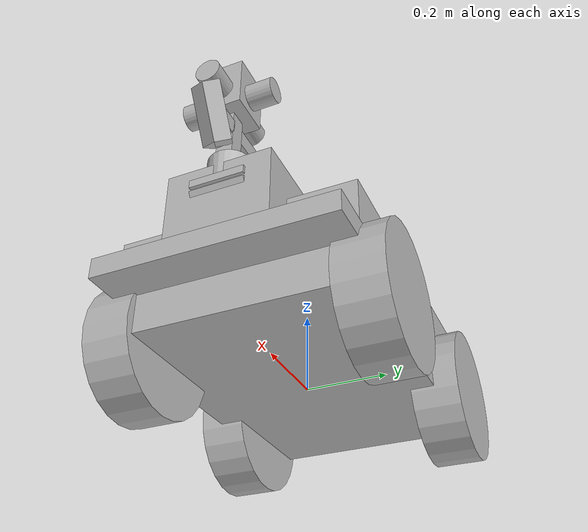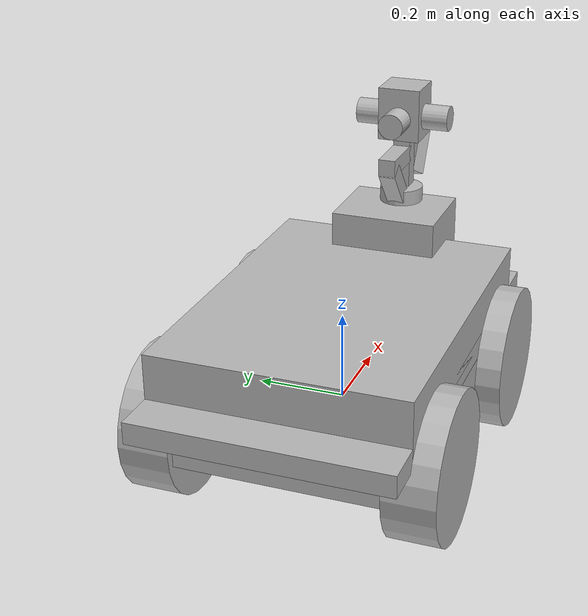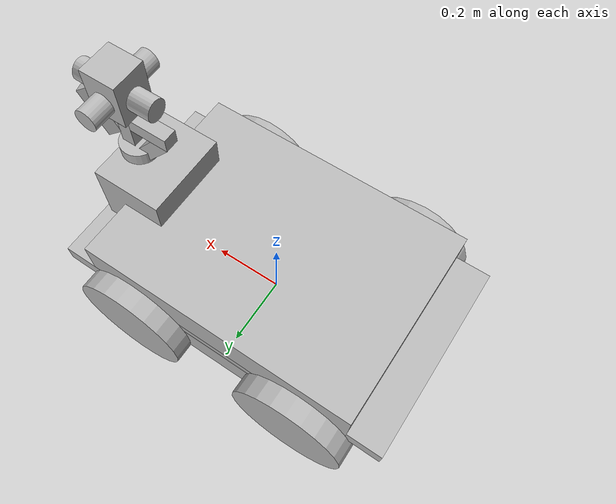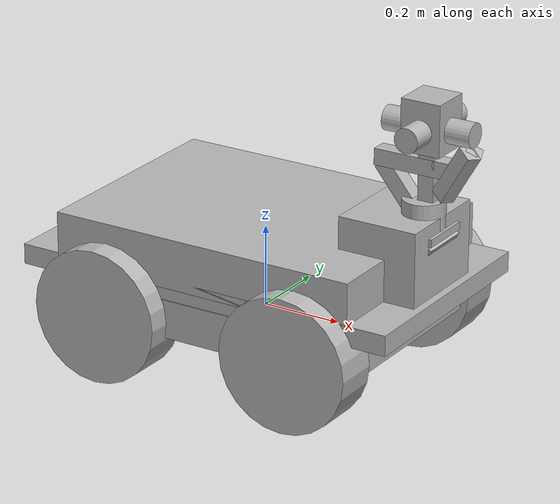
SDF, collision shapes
<?xml version='1.0' encoding='utf-8'?>
<sdf version="1.6">
  <model name="marble_husky_sensor_config_5">
    <link name="base_link">
      <inertial>
        <pose>-0.000543 -0.084945 0.062329 0 -0 0</pose>
        <mass>46.064</mass>
        <inertia>
          <ixx>0.615397</ixx>
          <ixy>-0.0240585</ixy>
          <ixz>-0.120749</ixz>
          <iyy>1.75388</iyy>
          <iyz>-0.0028322</iyz>
          <izz>2.03641</izz>
        </inertia>
      </inertial>
      <collision name="base_link_collision">
        <pose>0 0 0.12 0 0 0</pose>
        <geometry>
          <box>
            <size>0.9874 0.5709 0.05</size>
          </box>
        </geometry>
      </collision>
      <collision name="base_link_collision_bottom">
        <pose>0 0 0.046 0 0 0</pose>
        <geometry>
          <box>
            <size>0.80 0.5709 0.095</size>
          </box>
        </geometry>
      </collision>
      <collision name="base_link_collision_1">
        <pose>0 0 0.185625 0 -0 0</pose>
        <geometry>
          <box>
            <size>0.78992 0.5709 0.12375</size>
          </box>
        </geometry>
      </collision>
      <collision name="base_link_fixed_joint_lump__camera/camera_link_collision_2">
        <pose>0.478 0 0.285 0 -0 0</pose>
        <geometry>
          <box>
            <size>0.0078 0.13 0.0192</size>
          </box>
        </geometry>
        <surface>
          <contact>
            <ode>
              <kp>1e+13</kp>
              <kd>1</kd>
            </ode>
          </contact>
          <friction>
            <ode>
              <mu2>1</mu2>
              <fdir1>0 0 0</fdir1>
            </ode>
          </friction>
        </surface>
      </collision>
      <collision name="base_link_fixed_joint_lump__camera/camera_link_collision_3">
        <pose>0.473 0 0.260 0 0.5236 0</pose>
        <geometry>
          <box>
            <size>0.0078 0.13 0.0192</size>
          </box>
        </geometry>
        <surface>
          <contact>
            <ode>
              <kp>1e+13</kp>
              <kd>1</kd>
            </ode>
          </contact>
          <friction>
            <ode>
              <mu2>1</mu2>
              <fdir1>0 0 0</fdir1>
            </ode>
          </friction>
        </surface>
      </collision>
      <collision name="base_link_fixed_joint_lump__velodyne_base_link_collision_6">
        <pose>0.424 0 0.327 0 -0 0</pose>
        <geometry>
          <cylinder>
            <length>0.0717</length>
            <radius>0.0516</radius>
          </cylinder>
        </geometry>
      </collision>
      <collision name="base_link_fixed_joint_lump__sensor_tower_8">
       <pose>0.374 0 0.215 0 -0 0</pose>
        <geometry>
          <box>
            <size>0.2 0.25 0.225</size>
          </box>
        </geometry>
      </collision>
      <collision name="base_link_fixed_joint_lump__landing_pad_9">
        <pose>0.0 0 0.155 0 -0 0</pose>
        <geometry>
          <box>
            <size>0.500 0.385 0.155</size>
          </box>
        </geometry>
      </collision>
      <visual name="base_link_visual">
        <geometry>
          <mesh>
            <scale>1 1 1</scale>
            <uri>https://fuel.ignitionrobotics.org/1.0/OpenRobotics/models/MARBLE_HUSKY_SENSOR_CONFIG_1/tip/files/meshes/base_link.dae</uri>
          </mesh>
        </geometry>
      </visual>
      <visual name="base_link_fixed_joint_lump__front_bumper_link_visual_3">
        <pose>0.48 0 0.091 0 -0 0</pose>
        <geometry>
          <mesh>
            <scale>1 1 1</scale>
            <uri>https://fuel.ignitionrobotics.org/1.0/OpenRobotics/models/MARBLE_HUSKY_SENSOR_CONFIG_1/tip/files/meshes/bumper.dae</uri>
          </mesh>
        </geometry>
      </visual>
      <visual name="base_link_fixed_joint_lump__rear_bumper_link_visual_4">
        <pose>-0.48 0 0.091 0 -0 3.14159</pose>
        <geometry>
          <mesh>
            <scale>1 1 1</scale>
            <uri>https://fuel.ignitionrobotics.org/1.0/OpenRobotics/models/MARBLE_HUSKY_SENSOR_CONFIG_1/tip/files/meshes/bumper.dae</uri>
          </mesh>
        </geometry>
      </visual>
      <visual name="base_link_fixed_joint_lump__top_chassis_link_visual_5">
        <geometry>
          <mesh>
            <scale>1 1 1</scale>
            <uri>https://fuel.ignitionrobotics.org/1.0/OpenRobotics/models/MARBLE_HUSKY_SENSOR_CONFIG_1/tip/files/meshes/top_chassis.dae</uri>
          </mesh>
        </geometry>
      </visual>

      <!-- Rail on top of husky -->
      <visual name="base_link_fixed_joint_lump__user_rail_link_visual_13">
        <pose>0.272 0 0.245 0 -0 0</pose>
        <geometry>
          <mesh>
            <scale>1 1 1</scale>
            <uri>https://fuel.ignitionrobotics.org/1.0/OpenRobotics/models/MARBLE_HUSKY_SENSOR_CONFIG_1/tip/files/meshes/user_rail.dae</uri>
          </mesh>
        </geometry>
      </visual>
      <!-- 2D planar lidar at bottom of sensor suite -->
      <visual name="base_link_fixed_joint_lump__planar_lidar_link_visual_14">
        <pose>0.474 0 0.127 0 -0 0</pose>
        <geometry>
          <cylinder>
              <radius>0.045</radius>
              <length>0.05</length>
          </cylinder>
        </geometry>
      </visual>
      <visual name="base_link_fixed_joint_lump__sensor_tower_16">
       <pose>0.374 0 0.215 0 -0 0</pose>
        <geometry>
          <box>
            <size>0.2 0.25 0.225</size>
          </box>
        </geometry>
      </visual>
      <visual name="base_link_fixed_joint_lump__landing_pad_17">
       <pose>0.0 0 0.155 0 -0 0</pose>
        <geometry>
          <box>
            <size>0.500 0.385 0.155</size>
          </box>
        </geometry>
      </visual>

      <!-- Based on RPLidar S1 -->
      <sensor name="planar_laser" type="gpu_ray">
          <pose>0.485 0 0.166 0 -0 0</pose>
          <update_rate>20</update_rate>
          <lidar>
              <scan>
                  <horizontal>
                      <samples>920</samples>
                      <resolution>1</resolution>
                      <min_angle>-3.14159</min_angle>
                      <max_angle>3.14159</max_angle>
                  </horizontal>
              </scan>
              <range>
                  <min>0.04</min>
                  <max>25</max>
                  <resolution>0.03</resolution>
              </range>
              <noise>
                  <type>gaussian</type>
                  <mean>0</mean>
                  <stddev>0.01</stddev>
              </noise>
          </lidar>
      </sensor>
      <gravity>1</gravity>
      <velocity_decay/>

      <visual name="tof_left_camera_visual">
        <pose>0.527 0.015 0.429 -1.344521 0.4763404 0.4653087</pose>
        <geometry>
          <mesh>
            <uri>https://fuel.ignitionrobotics.org/1.0/OpenRobotics/models/MARBLE_HUSKY_SENSOR_CONFIG_1/tip/files/meshes/realsense.dae</uri>
          </mesh>
        </geometry>
      </visual>
      <visual name="tof_left_camera_mount_visual">
        <pose>0.5105 0.01 0.439 -1.344521 0.4763404 0.4653087</pose>
        <geometry>
          <box>
            <size>0.04 0.135 0.0385</size>
          </box>
        </geometry>
      </visual>
      <collision name="tof_left_camera_mount_collision">
        <pose>0.5105 0.01 0.439 -1.344521 0.4763404 0.4653087</pose>
        <geometry>
          <box>
            <size>0.04 0.135 0.0385</size>
          </box>
        </geometry>
      </collision>
      <sensor name="tof_left" type="depth_camera">
        <pose>0.527 0.015 0.429 -1.344521 0.4763404 0.4653087</pose>
        <always_on>1</always_on>
        <update_rate>10</update_rate>
        <camera name="tof_left">
            <horizontal_fov>1.0821</horizontal_fov>
            <lens>
                <intrinsics>
                    <!-- fx = fy = width / ( 2 * tan (hfov / 2 ) ) -->
                    <fx>186.4</fx>
                    <fy>186.4</fy>
                    <!-- cx = ( width + 1 ) / 2 -->
                    <cx>112.5</cx>
                    <!-- cy = ( height + 1 ) / 2 -->
                    <cy>86</cy>
                    <s>0</s>
                </intrinsics>
            </lens>
            <distortion>
                <k1>0.0</k1>
                <k2>0.0</k2>
                <k3>0.0</k3>
                <p1>0.0</p1>
                <p2>0.0</p2>
                <center>0.5 0.5</center>
            </distortion>
            <image>
                <width>224</width>
                <height>171</height>
                <format>R8G8B8</format>
            </image>
            <clip>
                <near>0.1</near>
                <far>4.0</far>
            </clip>
            <depth_camera>
              <output>depths</output>
              <clip>
                <near>0.1</near>
                <far>4.0</far>
              </clip>
            </depth_camera>
            <noise>
                <type>gaussian</type>
                <mean>0</mean>
                <stddev>0.007</stddev>
            </noise>
        </camera>
      </sensor>
      <visual name="tof_right_camera_visual">
        <pose>0.527 -0.015 0.429 -1.7970717 0.4763404 -0.4653087</pose>
        <geometry>
          <mesh>
            <uri>https://fuel.ignitionrobotics.org/1.0/OpenRobotics/models/MARBLE_HUSKY_SENSOR_CONFIG_1/tip/files/meshes/realsense.dae</uri>
          </mesh>
        </geometry>
      </visual>
      <visual name="tof_right_camera_mount_visual">
        <pose>0.5105 -0.01 0.439 -1.7970717 0.4763404 -0.4653087</pose>
        <geometry>
          <box>
            <size>0.04 0.135 0.0385</size>
          </box>
        </geometry>
      </visual>
      <collision name="tof_right_camera_mount_collision">
        <pose>0.5105 -0.01 0.439 -1.7970717 0.4763404 -0.4653087</pose>
        <geometry>
          <box>
            <size>0.04 0.135 0.0385</size>
          </box>
        </geometry>
      </collision>
      <sensor name="tof_right" type="depth_camera">
        <pose>0.527 -0.015 0.429 -1.7970717 0.4763404 -0.4653087</pose>
        <always_on>1</always_on>
        <update_rate>10</update_rate>
        <camera name="tof_right">
            <horizontal_fov>1.0821</horizontal_fov>
            <lens>
                <intrinsics>
                    <!-- fx = fy = width / ( 2 * tan (hfov / 2 ) ) -->
                    <fx>186.4</fx>
                    <fy>186.4</fy>
                    <!-- cx = ( width + 1 ) / 2 -->
                    <cx>112.5</cx>
                    <!-- cy = ( height + 1 ) / 2 -->
                    <cy>86</cy>
                    <s>0</s>
                </intrinsics>
            </lens>
            <distortion>
                <k1>0.0</k1>
                <k2>0.0</k2>
                <k3>0.0</k3>
                <p1>0.0</p1>
                <p2>0.0</p2>
                <center>0.5 0.5</center>
            </distortion>
            <image>
                <width>224</width>
                <height>171</height>
                <format>R8G8B8</format>
            </image>
            <clip>
                <near>0.1</near>
                <far>4.0</far>
            </clip>
            <depth_camera>
              <output>depths</output>
              <clip>
                  <near>0.1</near>
                  <far>4.0</far>
              </clip>
            </depth_camera>
            <noise>
                <type>gaussian</type>
                <mean>0</mean>
                <stddev>0.007</stddev>
            </noise>
        </camera>
      </sensor>

      <visual name="sensor_head_visual">
        <pose>0.4379 0 .54818 0 0 0</pose>
        <geometry>
          <box>
            <size>0.1 0.1 0.125</size>
          </box>
        </geometry>
      </visual>
      <collision name="sensor_head_collision">
        <pose>0.4379 0 0.54818 0 0 0</pose>
        <geometry>
          <box>
            <size>0.1 0.1 0.125</size>
          </box>
        </geometry>
      </collision>
      <visual name="sensor_tower_support_visual">
        <pose>0.4379 0 0.39918 0 0 0</pose>
        <geometry>
          <box>
            <size>0.04 0.04 0.25</size>
          </box>
        </geometry>
      </visual>
      <collision name="sensor_tower_support_collision">
        <pose>0.4379 0 0.39918 0 0 0</pose>
        <geometry>
          <box>
            <size>0.04 0.04 0.25</size>
          </box>
        </geometry>
      </collision>
      <visual name="vertical_lidar_support_visual">
        <pose>0.4029 0 0.44418 0 0 0</pose>/
        <geometry>
          <box>
            <size>0.2 0.04 0.04</size>
          </box>
        </geometry>
      </visual>
      <collision name="vertical_lidar_support_collision">
        <pose>0.4029 0 0.44418 0 0 0</pose>
        <geometry>
          <box>
            <size>0.2 0.04 0.04</size>
          </box>
        </geometry>
      </collision>
      <visual name="diagonal_lidar_support_visual">
        <pose>0.3779 0 0.36418 0 0.8854 0</pose>
        <geometry>
          <box>
            <size>0.180 0.04 0.04</size>
          </box>
        </geometry>
      </visual>
      <collision name="diagonal_lidar_support_collision">
        <pose>0.3779 0 0.36418 0 0.8854 0</pose>
        <geometry>
          <box>
            <size>0.180 0.04 0.04</size>
          </box>
        </geometry>
      </collision>
        <sensor name="imu_sensor" type="imu">
          <always_on>1</always_on>
          <update_rate>200</update_rate>
          <imu>
                      <enable_orientation>0</enable_orientation>
                    <angular_velocity>
                        <x>
                            <noise type="gaussian">
                                <mean>0</mean>
                                <stddev>0.009</stddev>
                                <bias_mean>0.00075</bias_mean>
                                <bias_stddev>0.005</bias_stddev>
                                <dynamic_bias_stddev>0.00002</dynamic_bias_stddev>
                                <dynamic_bias_correlation_time>400.0</dynamic_bias_correlation_time>
                                <precision>0.00025</precision>
                            </noise>
                        </x>
                        <y>
                            <noise type="gaussian">
                                <mean>0</mean>
                                <stddev>0.009</stddev>
                                <bias_mean>0.00075</bias_mean>
                                <bias_stddev>0.005</bias_stddev>
                                <dynamic_bias_stddev>0.00002</dynamic_bias_stddev>
                                <dynamic_bias_correlation_time>400.0</dynamic_bias_correlation_time>
                                <precision>0.00025</precision>
                            </noise>
                        </y>
                        <z>
                            <noise type="gaussian">
                                <mean>0</mean>
                                <stddev>0.009</stddev>
                                <bias_mean>0.00075</bias_mean>
                                <bias_stddev>0.005</bias_stddev>
                                <dynamic_bias_stddev>0.00002</dynamic_bias_stddev>
                                <dynamic_bias_correlation_time>400.0</dynamic_bias_correlation_time>
                                <precision>0.00025</precision>
                            </noise>
                        </z>
                    </angular_velocity>
                    <linear_acceleration>
                        <x>
                            <noise type="gaussian">
                                <mean>0</mean>
                                <stddev>0.021</stddev>
                                <bias_mean>0.05</bias_mean>
                                <bias_stddev>0.0075</bias_stddev>
                                <dynamic_bias_stddev>0.000375</dynamic_bias_stddev>
                                <dynamic_bias_correlation_time>175.0</dynamic_bias_correlation_time>
                                <precision>0.005</precision>
                            </noise>
                        </x>
                        <y>
                            <noise type="gaussian">
                                <mean>0</mean>
                                <stddev>0.021</stddev>
                                <bias_mean>0.05</bias_mean>
                                <bias_stddev>0.0075</bias_stddev>
                                <dynamic_bias_stddev>0.000375</dynamic_bias_stddev>
                                <dynamic_bias_correlation_time>175.0</dynamic_bias_correlation_time>
                                <precision>0.005</precision>
                            </noise>
                        </y>
                        <z>
                            <noise type="gaussian">
                                <mean>0</mean>
                                <stddev>0.021</stddev>
                                <bias_mean>0.05</bias_mean>
                                <bias_stddev>0.0075</bias_stddev>
                                <dynamic_bias_stddev>0.000375</dynamic_bias_stddev>
                                <dynamic_bias_correlation_time>175.0</dynamic_bias_correlation_time>
                                <precision>0.005</precision>
                            </noise>
                        </z>
                    </linear_acceleration>
                </imu>
        </sensor>

        <!-- Bottom cylinder of Ouster/Velodyne 3D Lidar -->
        <visual name="base_link_fixed_joint_lump__velodyne_base_link_visual_10">
          <pose>0.4379 0 0.61018 0 -0 0</pose>
          <geometry>
            <mesh>
              <scale>1 1 1</scale>
              <uri>https://fuel.ignitionrobotics.org/1.0/OpenRobotics/models/MARBLE_HUSKY_SENSOR_CONFIG_1/tip/files/meshes/VLP16_base_1.dae</uri>
            </mesh>
          </geometry>
        </visual>
        <!-- Top cylinder of Ouster/Velodyne 3D Lidar -->
        <visual name="base_link_fixed_joint_lump__velodyne_base_link_visual_11">
          <pose>0.4379 0 0.61018 0 -0 0</pose>
          <geometry>
            <mesh>
              <scale>1 1 1</scale>
              <uri>https://fuel.ignitionrobotics.org/1.0/OpenRobotics/models/MARBLE_HUSKY_SENSOR_CONFIG_1/tip/files/meshes/VLP16_base_2.dae</uri>
            </mesh>
          </geometry>
        </visual>
        <!-- Main cylinder of Ouster/Velodyne 3D Lidar -->
        <visual name="base_link_fixed_joint_lump__velodyne_visual_12">
          <pose>0.4379 0 0.61018 0 -0 0</pose>
          <geometry>
            <mesh>
              <scale>1 1 1</scale>
              <uri>https://fuel.ignitionrobotics.org/1.0/OpenRobotics/models/MARBLE_HUSKY_SENSOR_CONFIG_1/tip/files/meshes/VLP16_scan.dae</uri>
            </mesh>
          </geometry>
        </visual>

        <!-- Bottom cylinder of Vertical Ouster/Velodyne 3D Lidar -->
        <visual name="base_link_fixed_joint_lump__velodyne_base_link_visual_13">
          <pose>0.31037 0 0.44818 0 -1.5708 0</pose>
          <geometry>
            <mesh>
              <scale>1 1 1</scale>
              <uri>https://fuel.ignitionrobotics.org/1.0/OpenRobotics/models/MARBLE_HUSKY_SENSOR_CONFIG_1/tip/files/meshes/VLP16_base_1.dae</uri>
            </mesh>
          </geometry>
        </visual>
        <!-- Top cylinder of Vertical Ouster/Velodyne 3D Lidar -->
        <visual name="base_link_fixed_joint_lump__velodyne_base_link_visual_14">
          <pose>0.31037 0 0.44818 0 -1.5708 0</pose>
          <geometry>
            <mesh>
              <scale>1 1 1</scale>
              <uri>https://fuel.ignitionrobotics.org/1.0/OpenRobotics/models/MARBLE_HUSKY_SENSOR_CONFIG_1/tip/files/meshes/VLP16_base_2.dae</uri>
            </mesh>
          </geometry>
        </visual>
        <!-- Main cylinder of Vertical Ouster/Velodyne 3D Lidar -->
        <visual name="base_link_fixed_joint_lump__velodyne_visual_15">
          <pose>0.31037 0 0.44818 0 -1.5708 0</pose>
          <geometry>
            <mesh>
              <scale>1 1 1</scale>
              <uri>https://fuel.ignitionrobotics.org/1.0/OpenRobotics/models/MARBLE_HUSKY_SENSOR_CONFIG_1/tip/files/meshes/VLP16_scan.dae</uri>
            </mesh>
          </geometry>
        </visual>

        <!-- OS1-64 3D Laser Configuration (10x2048 or 10x1024 or 20x1024 or 20x512 as possible (rate) x (hor. res.) configs)-->
        <sensor name="front_laser" type="gpu_lidar">
          <visualize>0</visualize>
          <update_rate>10</update_rate>
          <lidar>
            <scan>
              <horizontal>
                <!-- Resolution can't be above 16k, see
                https://bitbucket.org/ignitionrobotics/ign-sensors/issues/8 -->
                <samples>1024</samples>
                <resolution>1</resolution>
                <min_angle>-3.14159</min_angle>
                <max_angle>3.14159</max_angle>
              </horizontal>
              <vertical>
                <samples>64</samples>
                <resolution>1</resolution>
                <min_angle>-0.2897</min_angle>
                <max_angle>0.2897</max_angle>
              </vertical>
            </scan>
            <range>
              <min>0.8</min>
              <max>120</max>
              <resolution>0.01</resolution>
            </range>
            <noise>
              <type>gaussian</type>
              <mean>0</mean>
              <stddev>0.01</stddev>
            </noise>
          </lidar>
          <pose>0.4379 0 0.67018 0 -0 0</pose>
        </sensor>

        <!-- OS1-64 3D Laser Configuration (10x2048 or 10x1024 or 20x1024 or 20x512 as possible (rate) x (hor. res.) configs)-->
        <sensor name="vert_laser" type="gpu_lidar">
          <visualize>0</visualize>
          <update_rate>10</update_rate>
          <lidar>
            <scan>
              <horizontal>
                <!-- Resolution can't be above 16k, see
                https://bitbucket.org/ignitionrobotics/ign-sensors/issues/8 -->
                <samples>1024</samples>
                <resolution>1</resolution>
                <min_angle>-3.14159</min_angle>
                <max_angle>3.14159</max_angle>
              </horizontal>
              <vertical>
                <samples>64</samples>
                <resolution>1</resolution>
                <min_angle>-0.2897</min_angle>
                <max_angle>0.2897</max_angle>
              </vertical>
            </scan>
            <range>
              <min>0.8</min>
              <max>120</max>
              <resolution>0.01</resolution>
            </range>
            <noise>
              <type>gaussian</type>
              <mean>0</mean>
              <stddev>0.01</stddev>
            </noise>
          </lidar>
          <pose>0.31037 0 0.44818 0 -1.5708 0</pose>
        </sensor>

        <visual name="camera_front_visual">
            <pose>0.5179 0 0.53718 0 1.5709 0</pose>
            <geometry>
              <cylinder>
                <length>0.065</length>
                <radius>0.03</radius>
              </cylinder>
            </geometry>
        </visual>
        <collision name="camera_front_collision">
          <pose>0.5179 0 0.53718 0 1.5709 0</pose>
          <geometry>
            <cylinder>
              <length>0.065</length>
              <radius>0.03</radius>
            </cylinder>
          </geometry>
        </collision>

        <sensor name="camera_front" type="camera">
          <pose>0.5579 0.0 0.53718 0 0 0</pose>
          <always_on>1</always_on>
          <update_rate>10</update_rate>
          <camera name="camera_front">
              <horizontal_fov>1.39626</horizontal_fov>
              <lens>
                  <intrinsics>
                      <!-- fx = fy = width / ( 2 * tan (hfov / 2 ) ) -->
                      <fx>481.5</fx>
                      <fy>481.5</fy>
                      <!-- cx = ( width + 1 ) / 2 -->
                      <cx>404.5</cx>
                      <!-- cy = ( height + 1 ) / 2 -->
                      <cy>304.5</cy>
                      <s>0</s>
                  </intrinsics>
              </lens>
              <distortion>
                  <k1>0.0</k1>
                  <k2>0.0</k2>
                  <k3>0.0</k3>
                  <p1>0.0</p1>
                  <p2>0.0</p2>
                  <center>0.5 0.5</center>
              </distortion>
              <image>
                  <width>808</width>
                  <height>608</height>
                  <format>R8G8B8</format>
              </image>
              <clip>
                  <near>0.01</near>
                  <far>300</far>
              </clip>
              <noise>
                  <type>gaussian</type>
                  <mean>0</mean>
                  <stddev>0.007</stddev>
              </noise>
          </camera>
        </sensor>

        <visual name="camera_back_visual">
            <pose>0.3579 0 0.53718 0 1.5709 0</pose>
            <geometry>
              <cylinder>
                <length>0.065</length>
                <radius>0.03</radius>
              </cylinder>
            </geometry>
        </visual>
        <collision name="camera_back_collision">
          <pose>0.3579 0 0.53718 0 1.5709 0</pose>
          <geometry>
            <cylinder>
              <length>0.065</length>
              <radius>0.03</radius>
            </cylinder>
          </geometry>
        </collision>
        <sensor name="camera_back" type="camera">
            <pose>0.3179 0.0 0.53718 0 0 3.14159</pose>
            <always_on>1</always_on>
            <update_rate>10</update_rate>
            <camera name="camera_back">
                <horizontal_fov>1.39626</horizontal_fov>
                <lens>
                    <intrinsics>
                        <!-- fx = fy = width / ( 2 * tan (hfov / 2 ) ) -->
                        <fx>481.5</fx>
                        <fy>481.5</fy>
                        <!-- cx = ( width + 1 ) / 2 -->
                        <cx>404.5</cx>
                        <!-- cy = ( height + 1 ) / 2 -->
                        <cy>304.5</cy>
                        <s>0</s>
                    </intrinsics>
                </lens>
                <distortion>
                    <k1>0.0</k1>
                    <k2>0.0</k2>
                    <k3>0.0</k3>
                    <p1>0.0</p1>
                    <p2>0.0</p2>
                    <center>0.5 0.5</center>
                </distortion>
                <image>
                    <width>808</width>
                    <height>608</height>
                    <format>R8G8B8</format>
                </image>
                <clip>
                    <near>0.01</near>
                    <far>300</far>
                </clip>
                <noise>
                    <type>gaussian</type>
                    <mean>0</mean>
                    <stddev>0.007</stddev>
                </noise>
            </camera>
        </sensor>

        <visual name="camera_left_visual">
          <pose>0.4379 0.08 0.53718 1.5709 0 0</pose>
          <geometry>
            <cylinder>
              <length>0.065</length>
              <radius>0.03</radius>
            </cylinder>
          </geometry>
        </visual>
        <collision name="camera_left_collision">
          <pose>0.4379 0.08 0.53718 1.5709 0 0</pose>
          <geometry>
            <cylinder>
              <length>0.065</length>
              <radius>0.03</radius>
            </cylinder>
          </geometry>
        </collision>
        <sensor name="camera_left" type="camera">
            <pose>0.4379 0.12 0.53718 0 0 1.5708</pose>
            <always_on>1</always_on>
            <update_rate>10</update_rate>
            <camera name="camera_left">
                <horizontal_fov>1.39626</horizontal_fov>
                <lens>
                    <intrinsics>
                        <!-- fx = fy = width / ( 2 * tan (hfov / 2 ) ) -->
                        <fx>481.5</fx>
                        <fy>481.5</fy>
                        <!-- cx = ( width + 1 ) / 2 -->
                        <cx>404.5</cx>
                        <!-- cy = ( height + 1 ) / 2 -->
                        <cy>304.5</cy>
                        <s>0</s>
                    </intrinsics>
                </lens>
                <distortion>
                    <k1>0.0</k1>
                    <k2>0.0</k2>
                    <k3>0.0</k3>
                    <p1>0.0</p1>
                    <p2>0.0</p2>
                    <center>0.5 0.5</center>
                </distortion>
                <image>
                    <width>808</width>
                    <height>608</height>
                    <format>R8G8B8</format>
                </image>
                <clip>
                    <near>0.01</near>
                    <far>300</far>
                </clip>
                <noise>
                    <type>gaussian</type>
                    <mean>0</mean>
                    <stddev>0.007</stddev>
                </noise>
            </camera>
        </sensor>

        <visual name="camera_right_visual">
          <pose>0.4379 -0.08 0.53718 1.5709 0 0</pose>
          <geometry>
              <cylinder>
                <length>0.065</length>
                <radius>0.03</radius>
              </cylinder>
          </geometry>
        </visual>
        <collision name="camera_right_collision">
          <pose>0.4379 -0.08 0.53718 1.5709 0 0</pose>
          <geometry>
              <cylinder>
                <length>0.065</length>
                <radius>0.03</radius>
              </cylinder>
          </geometry>
        </collision>
        <sensor name="camera_right" type="camera">
            <pose>0.4379 -0.12 0.53718 0 0 -1.5708</pose>
            <always_on>1</always_on>
            <update_rate>10</update_rate>
            <camera name="camera_right">
                <horizontal_fov>1.39626</horizontal_fov>
                <lens>
                    <intrinsics>
                        <!-- fx = fy = width / ( 2 * tan (hfov / 2 ) ) -->
                        <fx>481.5</fx>
                        <fy>481.5</fy>
                        <!-- cx = ( width + 1 ) / 2 -->
                        <cx>404.5</cx>
                        <!-- cy = ( height + 1 ) / 2 -->
                        <cy>304.5</cy>
                        <s>0</s>
                    </intrinsics>
                </lens>
                <distortion>
                    <k1>0.0</k1>
                    <k2>0.0</k2>
                    <k3>0.0</k3>
                    <p1>0.0</p1>
                    <p2>0.0</p2>
                    <center>0.5 0.5</center>
                </distortion>
                <image>
                    <width>808</width>
                    <height>608</height>
                    <format>R8G8B8</format>
                </image>
                <clip>
                    <near>0.01</near>
                    <far>300</far>
                </clip>
                <noise>
                    <type>gaussian</type>
                    <mean>0</mean>
                    <stddev>0.007</stddev>
                </noise>
            </camera>
        </sensor>

      <light name="flashlight_flashlight_light_source_lamp_light_front" type="spot">
        <pose>0.5179 0 0.53718 3.14159 1.5709 0</pose>
        <attenuation>
          <range>35</range>
          <linear>0</linear>
          <constant>0.1</constant>
          <quadratic>0.0025</quadratic>
        </attenuation>
        <diffuse>0.8 0.8 0.5 1</diffuse>
        <specular>0.8 0.8 0.5 1</specular>
        <spot>
          <inner_angle>1.8</inner_angle>
          <outer_angle>1.9</outer_angle>
          <falloff>1</falloff>
        </spot>
        <direction>0 0 -1</direction>
      </light>

      <light name="flashlight_flashlight_light_source_lamp_light_left" type="spot">
        <pose>0.4379 0.12 0.53718 1.5708 0 0</pose>
        <attenuation>
          <range>35</range>
          <linear>0</linear>
          <constant>0.1</constant>
          <quadratic>0.0025</quadratic>
        </attenuation>
        <diffuse>0.8 0.8 0.5 1</diffuse>
        <specular>0.8 0.8 0.5 1</specular>
        <spot>
          <inner_angle>1.8</inner_angle>
          <outer_angle>1.9</outer_angle>
          <falloff>1</falloff>
        </spot>
        <direction>0 0 -1</direction>
      </light>

      <light name="flashlight_flashlight_light_source_lamp_light_right" type="spot">
        <pose>0.4379 -0.12 0.53718 -1.5708 0 0</pose>
        <attenuation>
          <range>35</range>
          <linear>0</linear>
          <constant>0.1</constant>
          <quadratic>0.0025</quadratic>
        </attenuation>
        <diffuse>0.8 0.8 0.5 1</diffuse>
        <specular>0.8 0.8 0.5 1</specular>
        <spot>
          <inner_angle>1.8</inner_angle>
          <outer_angle>1.9</outer_angle>
          <falloff>1</falloff>
        </spot>
        <direction>0 0 -1</direction>
      </light>
      <light name="flashlight_flashlight_light_source_lamp_light_back" type="spot">
        <pose>0.3579 0 0.53718 3.14159 -1.5709 0</pose>
        <attenuation>
          <range>35</range>
          <linear>0</linear>
          <constant>0.1</constant>
          <quadratic>0.0025</quadratic>
        </attenuation>
        <diffuse>0.8 0.8 0.5 1</diffuse>
        <specular>0.8 0.8 0.5 1</specular>
        <spot>
          <inner_angle>1.8</inner_angle>
          <outer_angle>1.9</outer_angle>
          <falloff>1</falloff>
        </spot>
        <direction>0 0 -1</direction>
      </light>
    </link>

    <link name="front_left_wheel_link">
      <pose>0.256 0.2854 0.03282 0 -0 0</pose>
      <inertial>
        <mass>2.637</mass>
        <inertia>
          <ixx>0.02467</ixx>
          <ixy>0</ixy>
          <ixz>0</ixz>
          <iyy>0.04411</iyy>
          <iyz>0</iyz>
          <izz>0.02467</izz>
        </inertia>
      </inertial>
      <collision name="front_left_wheel_link_collision">
        <pose>0 0 0 1.5707963267948966 -0 0</pose>
        <geometry>
          <cylinder>
            <length>0.1143</length>
            <radius>0.1651</radius>
          </cylinder>
        </geometry>
        <surface>
          <contact>
            <ode>
              <kp>1e+07</kp>
              <kd>1</kd>
            </ode>
          </contact>
          <friction>
            <ode>
              <mu>0.5</mu>
              <mu2>1</mu2>
              <slip1>0.00062</slip1>
              <slip2>0</slip2>
              <fdir1>0 0 1</fdir1>
            </ode>
          </friction>
        </surface>
      </collision>
      <visual name="front_left_wheel_link_visual">
        <geometry>
          <mesh>
            <scale>1 1 1</scale>
            <uri>https://fuel.ignitionrobotics.org/1.0/OpenRobotics/models/MARBLE_HUSKY_SENSOR_CONFIG_1/tip/files/meshes/wheel.dae</uri>
          </mesh>
        </geometry>
      </visual>
      <gravity>1</gravity>
      <velocity_decay/>
    </link>
    <joint name="front_left_wheel_joint" type="revolute">
      <child>front_left_wheel_link</child>
      <parent>base_link</parent>
      <axis>
        <xyz>0 1 0</xyz>
        <limit>
          <lower>-1e+16</lower>
          <upper>1e+16</upper>
        </limit>
        <dynamics>
          <spring_reference>0</spring_reference>
          <spring_stiffness>0</spring_stiffness>
        </dynamics>
        <use_parent_model_frame>1</use_parent_model_frame>
      </axis>
    </joint>
    <link name="front_right_wheel_link">
      <pose>0.256 -0.2854 0.03282 0 -0 0</pose>
      <inertial>
        <mass>2.637</mass>
        <inertia>
          <ixx>0.02467</ixx>
          <ixy>0</ixy>
          <ixz>0</ixz>
          <iyy>0.04411</iyy>
          <iyz>0</iyz>
          <izz>0.02467</izz>
        </inertia>
      </inertial>
      <collision name="front_right_wheel_link_collision">
        <pose>0 0 0 1.5707963267948966 -0 0</pose>
        <geometry>
          <cylinder>
            <length>0.1143</length>
            <radius>0.1651</radius>
          </cylinder>
        </geometry>
        <surface>
          <contact>
            <ode>
              <kp>1e+07</kp>
              <kd>1</kd>
            </ode>
          </contact>
          <friction>
            <ode>
              <mu>0.5</mu>
              <mu2>1</mu2>
              <slip1>0.00062</slip1>
              <slip2>0</slip2>
              <fdir1>0 0 1</fdir1>
            </ode>
          </friction>
        </surface>
      </collision>
      <visual name="front_right_wheel_link_visual">
        <geometry>
          <mesh>
            <scale>1 1 1</scale>
            <uri>https://fuel.ignitionrobotics.org/1.0/OpenRobotics/models/MARBLE_HUSKY_SENSOR_CONFIG_1/tip/files/meshes/wheel.dae</uri>
          </mesh>
        </geometry>
      </visual>
      <gravity>1</gravity>
      <velocity_decay/>
    </link>
    <joint name="front_right_wheel_joint" type="revolute">
      <child>front_right_wheel_link</child>
      <parent>base_link</parent>
      <axis>
        <xyz>0 1 0</xyz>
        <limit>
          <lower>-1e+16</lower>
          <upper>1e+16</upper>
        </limit>
        <dynamics>
          <spring_reference>0</spring_reference>
          <spring_stiffness>0</spring_stiffness>
        </dynamics>
        <use_parent_model_frame>1</use_parent_model_frame>
      </axis>
    </joint>
    <link name="rear_left_wheel_link">
      <pose>-0.256 0.2854 0.03282 0 -0 0</pose>
      <inertial>
        <mass>2.637</mass>
        <inertia>
          <ixx>0.02467</ixx>
          <ixy>0</ixy>
          <ixz>0</ixz>
          <iyy>0.04411</iyy>
          <iyz>0</iyz>
          <izz>0.02467</izz>
        </inertia>
      </inertial>
      <collision name="rear_left_wheel_link_collision">
        <pose>0 0 0 1.5707963267948966 -0 0</pose>
        <geometry>
          <cylinder>
            <length>0.1143</length>
            <radius>0.1651</radius>
          </cylinder>
        </geometry>
        <surface>
          <contact>
            <ode>
              <kp>1e+07</kp>
              <kd>1</kd>
            </ode>
          </contact>
          <friction>
            <ode>
              <mu>0.5</mu>
              <mu2>1</mu2>
              <slip1>0.00062</slip1>
              <slip2>0</slip2>
              <fdir1>0 0 1</fdir1>
            </ode>
          </friction>
        </surface>
      </collision>
      <visual name="rear_left_wheel_link_visual">
        <geometry>
          <mesh>
            <scale>1 1 1</scale>
            <uri>https://fuel.ignitionrobotics.org/1.0/OpenRobotics/models/MARBLE_HUSKY_SENSOR_CONFIG_1/tip/files/meshes/wheel.dae</uri>
          </mesh>
        </geometry>
      </visual>
      <gravity>1</gravity>
      <velocity_decay/>
    </link>
    <joint name="rear_left_wheel_joint" type="revolute">
      <child>rear_left_wheel_link</child>
      <parent>base_link</parent>
      <axis>
        <xyz>0 1 0</xyz>
        <limit>
          <lower>-1e+16</lower>
          <upper>1e+16</upper>
        </limit>
        <dynamics>
          <spring_reference>0</spring_reference>
          <spring_stiffness>0</spring_stiffness>
        </dynamics>
        <use_parent_model_frame>1</use_parent_model_frame>
      </axis>
    </joint>
    <link name="rear_right_wheel_link">
      <pose>-0.256 -0.2854 0.03282 0 -0 0</pose>
      <inertial>
        <mass>2.637</mass>
        <inertia>
          <ixx>0.02467</ixx>
          <ixy>0</ixy>
          <ixz>0</ixz>
          <iyy>0.04411</iyy>
          <iyz>0</iyz>
          <izz>0.02467</izz>
        </inertia>
      </inertial>
      <collision name="rear_right_wheel_link_collision">
        <pose>0 0 0 1.5707963267948966 -0 0</pose>
        <geometry>
          <cylinder>
            <length>0.1143</length>
            <radius>0.1651</radius>
          </cylinder>
        </geometry>
        <surface>
          <contact>
            <ode>
              <kp>1e+07</kp>
              <kd>1</kd>
            </ode>
          </contact>
          <friction>
            <ode>
              <mu>0.5</mu>
              <mu2>1</mu2>
              <slip1>0.00062</slip1>
              <slip2>0</slip2>
              <fdir1>0 0 1</fdir1>
            </ode>
          </friction>
        </surface>
      </collision>
      <visual name="rear_right_wheel_link_visual">
        <geometry>
          <mesh>
            <scale>1 1 1</scale>
            <uri>https://fuel.ignitionrobotics.org/1.0/OpenRobotics/models/MARBLE_HUSKY_SENSOR_CONFIG_1/tip/files/meshes/wheel.dae</uri>
          </mesh>
        </geometry>
      </visual>
      <gravity>1</gravity>
      <velocity_decay/>
    </link>
    <joint name="rear_right_wheel_joint" type="revolute">
      <child>rear_right_wheel_link</child>
      <parent>base_link</parent>
      <axis>
        <xyz>0 1 0</xyz>
        <limit>
          <lower>-1e+16</lower>
          <upper>1e+16</upper>
        </limit>
        <dynamics>
          <spring_reference>0</spring_reference>
          <spring_stiffness>0</spring_stiffness>
        </dynamics>
        <use_parent_model_frame>1</use_parent_model_frame>
      </axis>
    </joint>

  </model>
</sdf>
